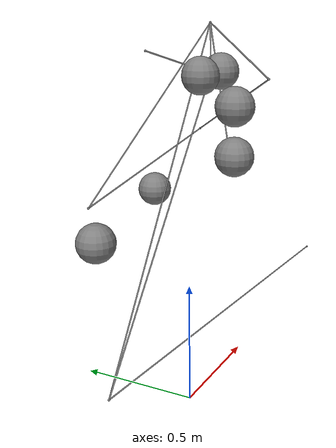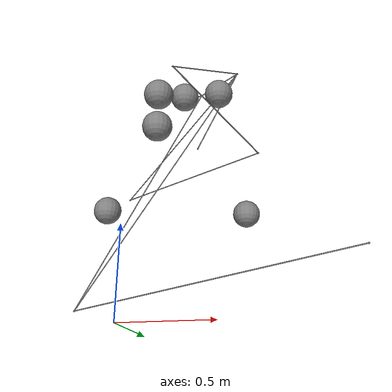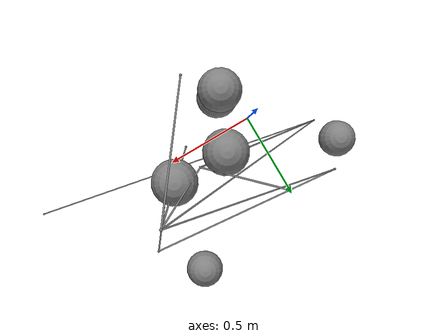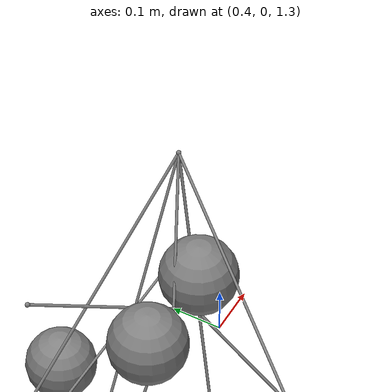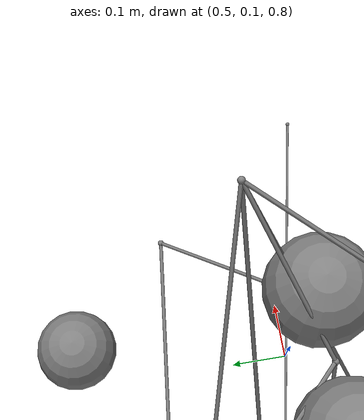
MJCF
<mujoco model="spatial-tendon-reference">
  <compiler angle="radian"/>
  <option jacobian="sparse"/>
  <default><geom type="sphere" size="0.08" mass="1"/></default>
  <worldbody>
    <site name="world-a" pos="-0.3 0.2 0.1"/>
    <site name="world-b" pos="1.2 -0.1 0.3"/>
    <body name="free" pos="0.2 -0.1 1">
      <freejoint name="free-joint"/><geom/>
      <site name="free-site" pos="0.2 0.1 -0.1"/>
      <body name="ball" pos="0 0 0.2">
        <joint name="ball-joint" type="ball"/><geom/>
        <site name="ball-site" pos="0.1 -0.1 0.1"/>
        <body name="hinge-a" pos="0.1 0.2 0.1">
          <joint name="hinge-a" type="hinge" axis="0 1 0" ref="0.4"/><geom/>
          <site name="a0" pos="0.1 0 0"/><site name="a1" pos="-0.1 0.2 0.1"/>
          <body name="hinge-b" pos="0.2 0 0">
            <joint name="hinge-b" type="hinge" axis="1 0 0" ref="-0.3"/><geom/>
            <site name="b" pos="0.1 0.1 0.2"/>
          </body>
        </body>
      </body>
    </body>
    <body name="slide" pos="-0.2 0.3 0.7">
      <joint name="slide" type="slide" axis="0 0 1" ref="0.15"/><geom/>
      <site name="slide-site" pos="0.1 0.1 0.1"/>
    </body>
    <body name="mocap" mocap="true" pos="0.6 0.5 0.7">
      <geom/><site name="mocap-site" pos="0.1 -0.2 0.3"/>
    </body>
  </worldbody>
  <tendon>
    <spatial name="long"><site site="world-a"/><site site="a0"/><site site="b"/><site site="slide-site"/><site site="mocap-site"/></spatial>
    <spatial name="same-body"><site site="a0"/><site site="a1"/></spatial>
    <spatial name="pulley"><pulley divisor="2"/><site site="world-a"/><site site="b"/><pulley divisor="4"/><site site="slide-site"/><site site="mocap-site"/><site site="ball-site"/></spatial>
    <spatial name="shared-root"><site site="free-site"/><site site="b"/><site site="ball-site"/></spatial>
    <spatial name="static"><site site="world-a"/><site site="world-b"/></spatial>
  </tendon>
</mujoco>
